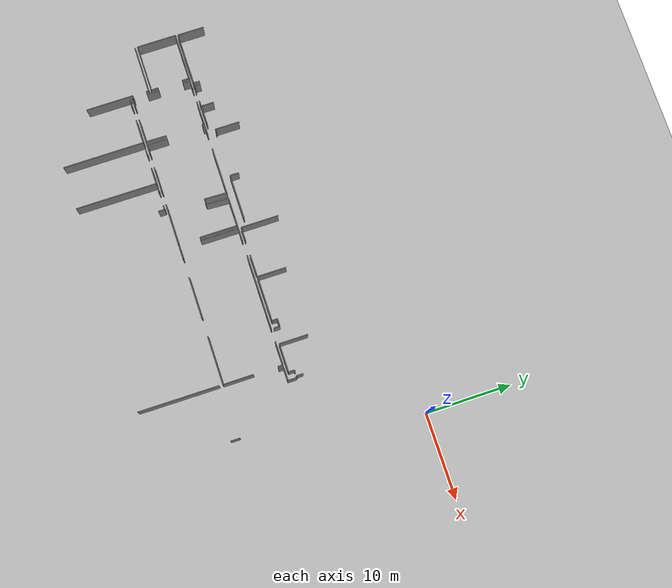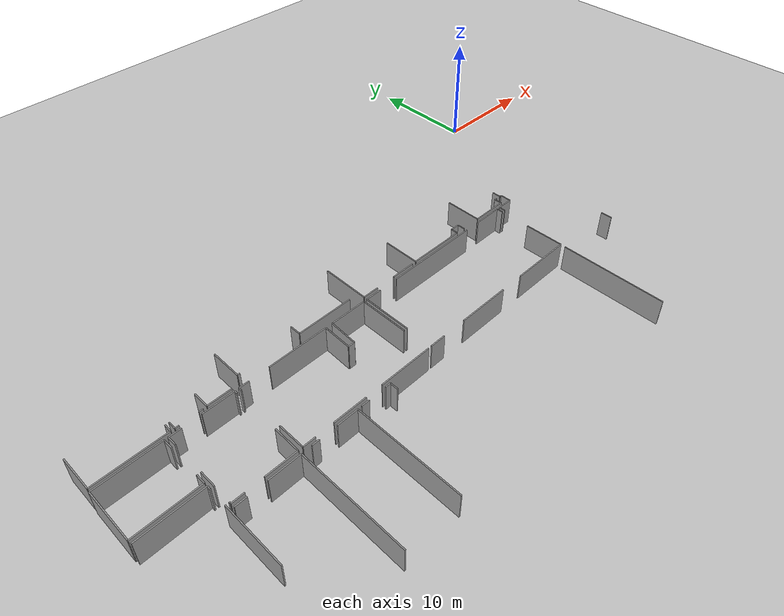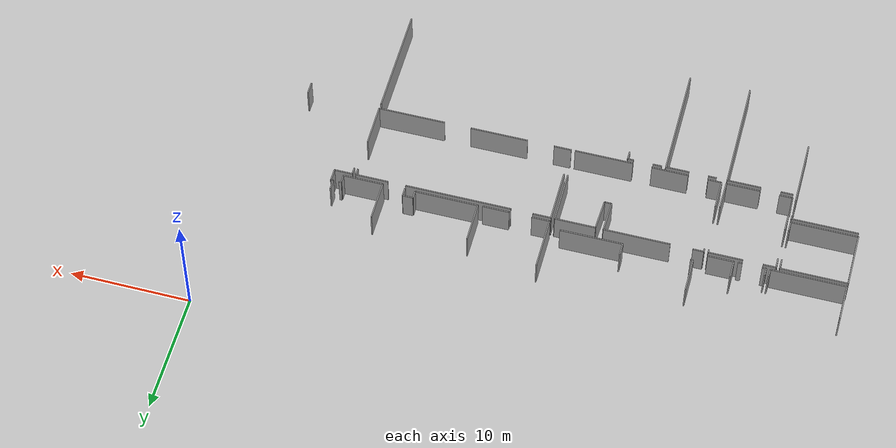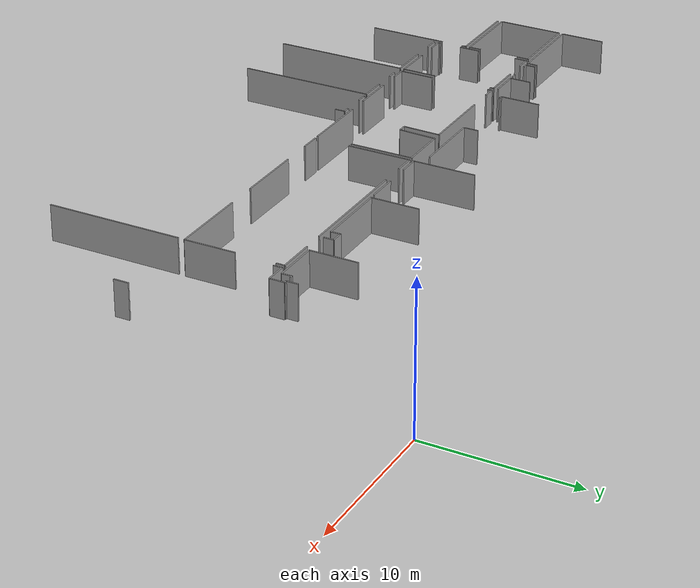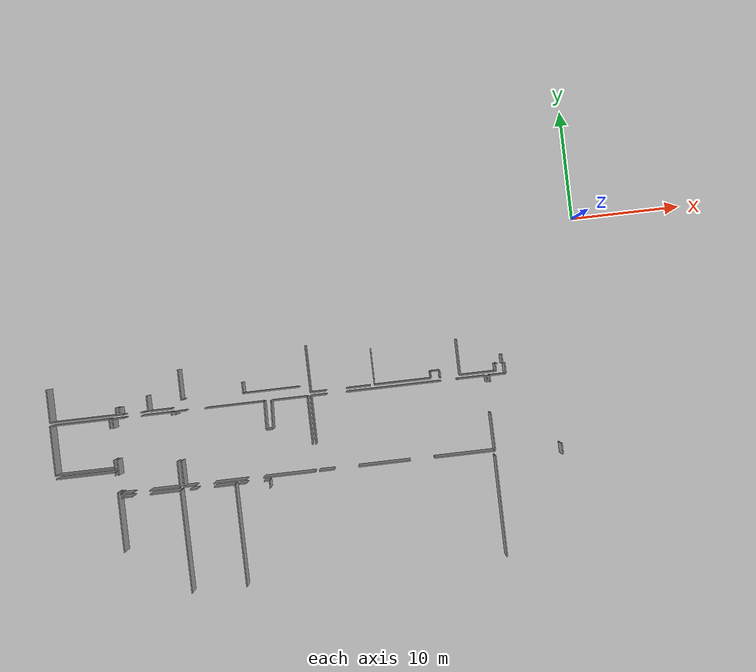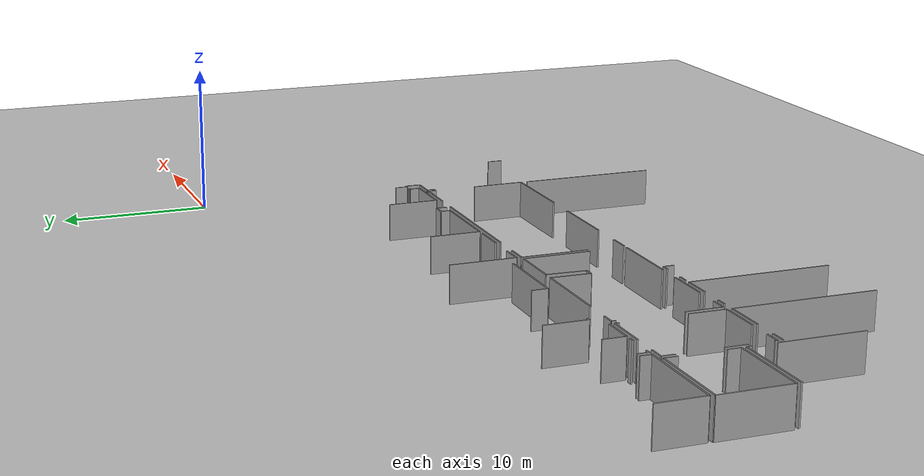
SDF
<sdf version="1.6">
 <world name="default">
  <model name="ground_plane">
   <static>1</static>
   <link name="link">
    <collision name="collision">
     <geometry><plane><normal>0 0 1</normal><size>100 100</size></plane></geometry>
     <surface><friction><ode><mu>100</mu><mu2>50</mu2></ode></friction></surface>
    </collision>
    <visual name="visual">
     <cast_shadows>0</cast_shadows>
     <geometry><plane><normal>0 0 1</normal><size>100 100</size></plane></geometry>
     <material>
      <script><uri>file://media/materials/scripts/gazebo.material</uri><name>Gazebo/Grey</name></script>
     </material>
    </visual>
   </link>
  </model>
  <model name="0510032260_A_40_1_102">
   <static>1</static>
   <link name="Wall_0">
    <collision name="Wall_0_Collision">
     <geometry><box><size>6.1017788129 0.1 2.5</size></box></geometry>
     <pose>3.05088940645 0 1.25 0 0 0</pose>
    </collision>
    <visual name="Wall_0_Visual">
     <pose>3.05088940645 0 1.25 0 0 0</pose>
     <geometry><box><size>6.1017788129 0.1 2.5</size></box></geometry>
     <material>
      <script><uri>file://media/materials/scripts/gazebo.material</uri><name>Gazebo/Grey</name></script>
      <ambient>1 1 1 1</ambient>
     </material>
    </visual>
    <pose>6.38659195187 -44.0144183479 0 0 0 3.14159265359</pose>
   </link>
   <link name="Wall_1">
    <collision name="Wall_1_Collision">
     <geometry><box><size>3.08204877615 0.1 2.5</size></box></geometry>
     <pose>1.54102438808 0 1.25 0 0 0</pose>
    </collision>
    <visual name="Wall_1_Visual">
     <pose>1.54102438808 0 1.25 0 0 0</pose>
     <geometry><box><size>3.08204877615 0.1 2.5</size></box></geometry>
     <material>
      <script><uri>file://media/materials/scripts/gazebo.material</uri><name>Gazebo/Grey</name></script>
      <ambient>1 1 1 1</ambient>
     </material>
    </visual>
    <pose>0.284813138973 -44.0144183479 0 0 0 1.57079632679</pose>
   </link>
   <link name="Wall_10">
    <collision name="Wall_10_Collision">
     <geometry><box><size>0.699463773333 0.1 2.5</size></box></geometry>
     <pose>0.349731886667 0 1.25 0 0 0</pose>
    </collision>
    <visual name="Wall_10_Visual">
     <pose>0.349731886667 0 1.25 0 0 0</pose>
     <geometry><box><size>0.699463773333 0.1 2.5</size></box></geometry>
     <material>
      <script><uri>file://media/materials/scripts/gazebo.material</uri><name>Gazebo/Grey</name></script>
      <ambient>1 1 1 1</ambient>
     </material>
    </visual>
    <pose>6.4162917177 -43.3155853963 0 0 0 -1.61326985949</pose>
   </link>
   <link name="Wall_16">
    <collision name="Wall_16_Collision">
     <geometry><box><size>0.355508735412 0.1 2.5</size></box></geometry>
     <pose>0.177754367706 0 1.25 0 0 0</pose>
    </collision>
    <visual name="Wall_16_Visual">
     <pose>0.177754367706 0 1.25 0 0 0</pose>
     <geometry><box><size>0.355508735412 0.1 2.5</size></box></geometry>
     <material>
      <script><uri>file://media/materials/scripts/gazebo.material</uri><name>Gazebo/Grey</name></script>
      <ambient>1 1 1 1</ambient>
     </material>
    </visual>
    <pose>8.99623676044 -44.0216529062 0 0 0 3.14159265359</pose>
   </link>
   <link name="Wall_17">
    <collision name="Wall_17_Collision">
     <geometry><box><size>0.331139696783 0.1 2.5</size></box></geometry>
     <pose>0.165569848392 0 1.25 0 0 0</pose>
    </collision>
    <visual name="Wall_17_Visual">
     <pose>0.165569848392 0 1.25 0 0 0</pose>
     <geometry><box><size>0.331139696783 0.1 2.5</size></box></geometry>
     <material>
      <script><uri>file://media/materials/scripts/gazebo.material</uri><name>Gazebo/Grey</name></script>
      <ambient>1 1 1 1</ambient>
     </material>
    </visual>
    <pose>7.05737512454 -44.0216529062 0 0 0 3.14159265359</pose>
   </link>
   <link name="Wall_18">
    <collision name="Wall_18_Collision">
     <geometry><box><size>0.696548354138 0.1 2.5</size></box></geometry>
     <pose>0.348274177069 0 1.25 0 0 0</pose>
    </collision>
    <visual name="Wall_18_Visual">
     <pose>0.348274177069 0 1.25 0 0 0</pose>
     <geometry><box><size>0.696548354138 0.1 2.5</size></box></geometry>
     <material>
      <script><uri>file://media/materials/scripts/gazebo.material</uri><name>Gazebo/Grey</name></script>
      <ambient>1 1 1 1</ambient>
     </material>
    </visual>
    <pose>6.72623542776 -44.0216529062 0 0 0 1.57079632679</pose>
   </link>
   <link name="Wall_30">
    <collision name="Wall_30_Collision">
     <geometry><box><size>2.09624501038 0.1 2.5</size></box></geometry>
     <pose>1.04812250519 0 1.25 0 0 0</pose>
    </collision>
    <visual name="Wall_30_Visual">
     <pose>1.04812250519 0 1.25 0 0 0</pose>
     <geometry><box><size>2.09624501038 0.1 2.5</size></box></geometry>
     <material>
      <script><uri>file://media/materials/scripts/gazebo.material</uri><name>Gazebo/Grey</name></script>
      <ambient>1 1 1 1</ambient>
     </material>
    </visual>
    <pose>11.4252714546 -43.9977915559 0 0 0 3.14159265359</pose>
   </link>
   <link name="Wall_31">
    <collision name="Wall_31_Collision">
     <geometry><box><size>1.46379230471 0.1 2.5</size></box></geometry>
     <pose>0.731896152357 0 1.25 0 0 0</pose>
    </collision>
    <visual name="Wall_31_Visual">
     <pose>0.731896152357 0 1.25 0 0 0</pose>
     <geometry><box><size>1.46379230471 0.1 2.5</size></box></geometry>
     <material>
      <script><uri>file://media/materials/scripts/gazebo.material</uri><name>Gazebo/Grey</name></script>
      <ambient>1 1 1 1</ambient>
     </material>
    </visual>
    <pose>9.32902644421 -43.9977915559 0 0 0 1.57079632679</pose>
   </link>
   <link name="Wall_35">
    <collision name="Wall_35_Collision">
     <geometry><box><size>5.4631069255 0.1 2.5</size></box></geometry>
     <pose>2.73155346275 0 1.25 0 0 0</pose>
    </collision>
    <visual name="Wall_35_Visual">
     <pose>2.73155346275 0 1.25 0 0 0</pose>
     <geometry><box><size>5.4631069255 0.1 2.5</size></box></geometry>
     <material>
      <script><uri>file://media/materials/scripts/gazebo.material</uri><name>Gazebo/Grey</name></script>
      <ambient>1 1 1 1</ambient>
     </material>
    </visual>
    <pose>5.6998165976 -48.8875914632 0 0 0 3.14159265359</pose>
   </link>
   <link name="Wall_36">
    <collision name="Wall_36_Collision">
     <geometry><box><size>4.57896774275 0.1 2.5</size></box></geometry>
     <pose>2.28948387138 0 1.25 0 0 0</pose>
    </collision>
    <visual name="Wall_36_Visual">
     <pose>2.28948387138 0 1.25 0 0 0</pose>
     <geometry><box><size>4.57896774275 0.1 2.5</size></box></geometry>
     <material>
      <script><uri>file://media/materials/scripts/gazebo.material</uri><name>Gazebo/Grey</name></script>
      <ambient>1 1 1 1</ambient>
     </material>
    </visual>
    <pose>0.236709672097 -48.8875914632 0 0 0 1.57079632679</pose>
   </link>
   <link name="Wall_37">
    <collision name="Wall_37_Collision">
     <geometry><box><size>5.46602613326 0.1 2.5</size></box></geometry>
     <pose>2.73301306663 0 1.25 0 0 0</pose>
    </collision>
    <visual name="Wall_37_Visual">
     <pose>2.73301306663 0 1.25 0 0 0</pose>
     <geometry><box><size>5.46602613326 0.1 2.5</size></box></geometry>
     <material>
      <script><uri>file://media/materials/scripts/gazebo.material</uri><name>Gazebo/Grey</name></script>
      <ambient>1 1 1 1</ambient>
     </material>
    </visual>
    <pose>0.236709672097 -44.3086237205 0 0 0 0.0</pose>
   </link>
   <link name="Wall_38">
    <collision name="Wall_38_Collision">
     <geometry><box><size>0.859516299968 0.1 2.5</size></box></geometry>
     <pose>0.429758149984 0 1.25 0 0 0</pose>
    </collision>
    <visual name="Wall_38_Visual">
     <pose>0.429758149984 0 1.25 0 0 0</pose>
     <geometry><box><size>0.859516299968 0.1 2.5</size></box></geometry>
     <material>
      <script><uri>file://media/materials/scripts/gazebo.material</uri><name>Gazebo/Grey</name></script>
      <ambient>1 1 1 1</ambient>
     </material>
    </visual>
    <pose>5.70273580535 -44.3086237205 0 0 0 -1.57079632679</pose>
   </link>
   <link name="Wall_39">
    <collision name="Wall_39_Collision">
     <geometry><box><size>0.840229215503 0.1 2.5</size></box></geometry>
     <pose>0.420114607751 0 1.25 0 0 0</pose>
    </collision>
    <visual name="Wall_39_Visual">
     <pose>0.420114607751 0 1.25 0 0 0</pose>
     <geometry><box><size>0.840229215503 0.1 2.5</size></box></geometry>
     <material>
      <script><uri>file://media/materials/scripts/gazebo.material</uri><name>Gazebo/Grey</name></script>
      <ambient>1 1 1 1</ambient>
     </material>
    </visual>
    <pose>5.70273580535 -48.0473673188 0 0 0 -1.57427063306</pose>
   </link>
   <link name="Wall_40">
    <collision name="Wall_40_Collision">
     <geometry><box><size>2.78314728672 0.1 2.5</size></box></geometry>
     <pose>1.39157364336 0 1.25 0 0 0</pose>
    </collision>
    <visual name="Wall_40_Visual">
     <pose>1.39157364336 0 1.25 0 0 0</pose>
     <geometry><box><size>2.78314728672 0.1 2.5</size></box></geometry>
     <material>
      <script><uri>file://media/materials/scripts/gazebo.material</uri><name>Gazebo/Grey</name></script>
      <ambient>1 1 1 1</ambient>
     </material>
    </visual>
    <pose>11.426032987 -51.239457535 0 0 0 3.14159265359</pose>
   </link>
   <link name="Wall_41">
    <collision name="Wall_41_Collision">
     <geometry><box><size>1.07058771267 0.1 2.5</size></box></geometry>
     <pose>0.535293856337 0 1.25 0 0 0</pose>
    </collision>
    <visual name="Wall_41_Visual">
     <pose>0.535293856337 0 1.25 0 0 0</pose>
     <geometry><box><size>1.07058771267 0.1 2.5</size></box></geometry>
     <material>
      <script><uri>file://media/materials/scripts/gazebo.material</uri><name>Gazebo/Grey</name></script>
      <ambient>1 1 1 1</ambient>
     </material>
    </visual>
    <pose>7.0794595658 -51.239457535 0 0 0 3.14159265359</pose>
   </link>
   <link name="Wall_42">
    <collision name="Wall_42_Collision">
     <geometry><box><size>0.153575712191 0.1 2.5</size></box></geometry>
     <pose>0.0767878560957 0 1.25 0 0 0</pose>
    </collision>
    <visual name="Wall_42_Visual">
     <pose>0.0767878560957 0 1.25 0 0 0</pose>
     <geometry><box><size>0.153575712191 0.1 2.5</size></box></geometry>
     <material>
      <script><uri>file://media/materials/scripts/gazebo.material</uri><name>Gazebo/Grey</name></script>
      <ambient>1 1 1 1</ambient>
     </material>
    </visual>
    <pose>6.00887185313 -51.239457535 0 0 0 1.57079632679</pose>
   </link>
   <link name="Wall_43">
    <collision name="Wall_43_Collision">
     <geometry><box><size>1.43003103245 0.1 2.5</size></box></geometry>
     <pose>0.715015516224 0 1.25 0 0 0</pose>
    </collision>
    <visual name="Wall_43_Visual">
     <pose>0.715015516224 0 1.25 0 0 0</pose>
     <geometry><box><size>1.43003103245 0.1 2.5</size></box></geometry>
     <material>
      <script><uri>file://media/materials/scripts/gazebo.material</uri><name>Gazebo/Grey</name></script>
      <ambient>1 1 1 1</ambient>
     </material>
    </visual>
    <pose>6.00887185313 -49.4927559225 0 0 0 1.57079632679</pose>
   </link>
   <link name="Wall_44">
    <collision name="Wall_44_Collision">
     <geometry><box><size>0.851139442939 0.1 2.5</size></box></geometry>
     <pose>0.42556972147 0 1.25 0 0 0</pose>
    </collision>
    <visual name="Wall_44_Visual">
     <pose>0.42556972147 0 1.25 0 0 0</pose>
     <geometry><box><size>0.851139442939 0.1 2.5</size></box></geometry>
     <material>
      <script><uri>file://media/materials/scripts/gazebo.material</uri><name>Gazebo/Grey</name></script>
      <ambient>1 1 1 1</ambient>
     </material>
    </visual>
    <pose>6.00887185313 -45.1765168775 0 0 0 1.57079632679</pose>
   </link>
   <link name="Wall_45">
    <collision name="Wall_45_Collision">
     <geometry><box><size>1.03746105079 0.1 2.5</size></box></geometry>
     <pose>0.518730525394 0 1.25 0 0 0</pose>
    </collision>
    <visual name="Wall_45_Visual">
     <pose>0.518730525394 0 1.25 0 0 0</pose>
     <geometry><box><size>1.03746105079 0.1 2.5</size></box></geometry>
     <material>
      <script><uri>file://media/materials/scripts/gazebo.material</uri><name>Gazebo/Grey</name></script>
      <ambient>1 1 1 1</ambient>
     </material>
    </visual>
    <pose>6.00887185313 -44.3253774345 0 0 0 0.0</pose>
   </link>
   <link name="Wall_46">
    <collision name="Wall_46_Collision">
     <geometry><box><size>2.79279336451 0.1 2.5</size></box></geometry>
     <pose>1.39639668226 0 1.25 0 0 0</pose>
    </collision>
    <visual name="Wall_46_Visual">
     <pose>1.39639668226 0 1.25 0 0 0</pose>
     <geometry><box><size>2.79279336451 0.1 2.5</size></box></geometry>
     <material>
      <script><uri>file://media/materials/scripts/gazebo.material</uri><name>Gazebo/Grey</name></script>
      <ambient>1 1 1 1</ambient>
     </material>
    </visual>
    <pose>8.66205093383 -44.3253774345 0 0 0 0.0</pose>
   </link>
   <link name="Wall_47">
    <collision name="Wall_47_Collision">
     <geometry><box><size>0.263236386021 0.1 2.5</size></box></geometry>
     <pose>0.13161819301 0 1.25 0 0 0</pose>
    </collision>
    <visual name="Wall_47_Visual">
     <pose>0.13161819301 0 1.25 0 0 0</pose>
     <geometry><box><size>0.263236386021 0.1 2.5</size></box></geometry>
     <material>
      <script><uri>file://media/materials/scripts/gazebo.material</uri><name>Gazebo/Grey</name></script>
      <ambient>1 1 1 1</ambient>
     </material>
    </visual>
    <pose>11.4548442983 -44.3253774345 0 0 0 -1.57079632679</pose>
   </link>
   <link name="Wall_48">
    <collision name="Wall_48_Collision">
     <geometry><box><size>2.39557360553 0.1 2.5</size></box></geometry>
     <pose>1.19778680276 0 1.25 0 0 0</pose>
    </collision>
    <visual name="Wall_48_Visual">
     <pose>1.19778680276 0 1.25 0 0 0</pose>
     <geometry><box><size>2.39557360553 0.1 2.5</size></box></geometry>
     <material>
      <script><uri>file://media/materials/scripts/gazebo.material</uri><name>Gazebo/Grey</name></script>
      <ambient>1 1 1 1</ambient>
     </material>
    </visual>
    <pose>11.4548442983 -48.8440571911 0 0 0 -1.58282351137</pose>
   </link>
   <link name="Wall_57">
    <collision name="Wall_57_Collision">
     <geometry><box><size>5.4386109648 0.1 2.5</size></box></geometry>
     <pose>2.7193054824 0 1.25 0 0 0</pose>
    </collision>
    <visual name="Wall_57_Visual">
     <pose>2.7193054824 0 1.25 0 0 0</pose>
     <geometry><box><size>5.4386109648 0.1 2.5</size></box></geometry>
     <material>
      <script><uri>file://media/materials/scripts/gazebo.material</uri><name>Gazebo/Grey</name></script>
      <ambient>1 1 1 1</ambient>
     </material>
    </visual>
    <pose>0.268313269068 -49.2019774459 0 0 0 0.0</pose>
   </link>
   <link name="Wall_58">
    <collision name="Wall_58_Collision">
     <geometry><box><size>0.290397710326 0.1 2.5</size></box></geometry>
     <pose>0.145198855163 0 1.25 0 0 0</pose>
    </collision>
    <visual name="Wall_58_Visual">
     <pose>0.145198855163 0 1.25 0 0 0</pose>
     <geometry><box><size>0.290397710326 0.1 2.5</size></box></geometry>
     <material>
      <script><uri>file://media/materials/scripts/gazebo.material</uri><name>Gazebo/Grey</name></script>
      <ambient>1 1 1 1</ambient>
     </material>
    </visual>
    <pose>5.70692423387 -49.2019774459 0 0 0 -1.57079632679</pose>
   </link>
   <link name="Wall_59">
    <collision name="Wall_59_Collision">
     <geometry><box><size>5.51704880788 0.1 2.5</size></box></geometry>
     <pose>2.75852440394 0 1.25 0 0 0</pose>
    </collision>
    <visual name="Wall_59_Visual">
     <pose>2.75852440394 0 1.25 0 0 0</pose>
     <geometry><box><size>5.51704880788 0.1 2.5</size></box></geometry>
     <material>
      <script><uri>file://media/materials/scripts/gazebo.material</uri><name>Gazebo/Grey</name></script>
      <ambient>1 1 1 1</ambient>
     </material>
    </visual>
    <pose>5.70692423387 -51.0679858101 0 0 0 -1.57079632679</pose>
   </link>
   <link name="Wall_70">
    <collision name="Wall_70_Collision">
     <geometry><box><size>1.00534976551 0.1 2.5</size></box></geometry>
     <pose>0.502674882756 0 1.25 0 0 0</pose>
    </collision>
    <visual name="Wall_70_Visual">
     <pose>0.502674882756 0 1.25 0 0 0</pose>
     <geometry><box><size>1.00534976551 0.1 2.5</size></box></geometry>
     <material>
      <script><uri>file://media/materials/scripts/gazebo.material</uri><name>Gazebo/Grey</name></script>
      <ambient>1 1 1 1</ambient>
     </material>
    </visual>
    <pose>6.01369489202 -51.5727549071 0 0 0 0.0</pose>
   </link>
   <link name="Wall_71">
    <collision name="Wall_71_Collision">
     <geometry><box><size>2.78175114389 0.1 2.5</size></box></geometry>
     <pose>1.39087557194 0 1.25 0 0 0</pose>
    </collision>
    <visual name="Wall_71_Visual">
     <pose>1.39087557194 0 1.25 0 0 0</pose>
     <geometry><box><size>2.78175114389 0.1 2.5</size></box></geometry>
     <material>
      <script><uri>file://media/materials/scripts/gazebo.material</uri><name>Gazebo/Grey</name></script>
      <ambient>1 1 1 1</ambient>
     </material>
    </visual>
    <pose>8.63653959651 -51.5727549071 0 0 0 0.0</pose>
   </link>
   <link name="Wall_72">
    <collision name="Wall_72_Collision">
     <geometry><box><size>9.4332521548 0.1 2.5</size></box></geometry>
     <pose>4.7166260774 0 1.25 0 0 0</pose>
    </collision>
    <visual name="Wall_72_Visual">
     <pose>4.7166260774 0 1.25 0 0 0</pose>
     <geometry><box><size>9.4332521548 0.1 2.5</size></box></geometry>
     <material>
      <script><uri>file://media/materials/scripts/gazebo.material</uri><name>Gazebo/Grey</name></script>
      <ambient>1 1 1 1</ambient>
     </material>
    </visual>
    <pose>11.4182907404 -51.5727549071 0 0 0 -1.56860320032</pose>
   </link>
   <link name="Wall_73">
    <collision name="Wall_73_Collision">
     <geometry><box><size>4.82164275243 0.1 2.5</size></box></geometry>
     <pose>2.41082137622 0 1.25 0 0 0</pose>
    </collision>
    <visual name="Wall_73_Visual">
     <pose>2.41082137622 0 1.25 0 0 0</pose>
     <geometry><box><size>4.82164275243 0.1 2.5</size></box></geometry>
     <material>
      <script><uri>file://media/materials/scripts/gazebo.material</uri><name>Gazebo/Grey</name></script>
      <ambient>1 1 1 1</ambient>
     </material>
    </visual>
    <pose>23.9586995564 -51.2428844311 0 0 0 3.14159265359</pose>
   </link>
   <link name="Wall_74">
    <collision name="Wall_74_Collision">
     <geometry><box><size>3.01554160823 0.1 2.5</size></box></geometry>
     <pose>1.50777080411 0 1.25 0 0 0</pose>
    </collision>
    <visual name="Wall_74_Visual">
     <pose>1.50777080411 0 1.25 0 0 0</pose>
     <geometry><box><size>3.01554160823 0.1 2.5</size></box></geometry>
     <material>
      <script><uri>file://media/materials/scripts/gazebo.material</uri><name>Gazebo/Grey</name></script>
      <ambient>1 1 1 1</ambient>
     </material>
    </visual>
    <pose>17.577819098 -51.2428844311 0 0 0 3.14159265359</pose>
   </link>
   <link name="Wall_75">
    <collision name="Wall_75_Collision">
     <geometry><box><size>1.09800288113 0.1 2.5</size></box></geometry>
     <pose>0.549001440566 0 1.25 0 0 0</pose>
    </collision>
    <visual name="Wall_75_Visual">
     <pose>0.549001440566 0 1.25 0 0 0</pose>
     <geometry><box><size>1.09800288113 0.1 2.5</size></box></geometry>
     <material>
      <script><uri>file://media/materials/scripts/gazebo.material</uri><name>Gazebo/Grey</name></script>
      <ambient>1 1 1 1</ambient>
     </material>
    </visual>
    <pose>12.9178750706 -51.2428844311 0 0 0 3.14159265359</pose>
   </link>
   <link name="Wall_76">
    <collision name="Wall_76_Collision">
     <geometry><box><size>2.39438496735 0.1 2.5</size></box></geometry>
     <pose>1.19719248367 0 1.25 0 0 0</pose>
    </collision>
    <visual name="Wall_76_Visual">
     <pose>1.19719248367 0 1.25 0 0 0</pose>
     <geometry><box><size>2.39438496735 0.1 2.5</size></box></geometry>
     <material>
      <script><uri>file://media/materials/scripts/gazebo.material</uri><name>Gazebo/Grey</name></script>
      <ambient>1 1 1 1</ambient>
     </material>
    </visual>
    <pose>11.8198721895 -51.2428844311 0 0 0 1.57079632679</pose>
   </link>
   <link name="Wall_77">
    <collision name="Wall_77_Collision">
     <geometry><box><size>0.278340113088 0.1 2.5</size></box></geometry>
     <pose>0.139170056544 0 1.25 0 0 0</pose>
    </collision>
    <visual name="Wall_77_Visual">
     <pose>0.139170056544 0 1.25 0 0 0</pose>
     <geometry><box><size>0.278340113088 0.1 2.5</size></box></geometry>
     <material>
      <script><uri>file://media/materials/scripts/gazebo.material</uri><name>Gazebo/Grey</name></script>
      <ambient>1 1 1 1</ambient>
     </material>
    </visual>
    <pose>11.8198721895 -44.5886138205 0 0 0 1.57079632679</pose>
   </link>
   <link name="Wall_78">
    <collision name="Wall_78_Collision">
     <geometry><box><size>0.882489195758 0.1 2.5</size></box></geometry>
     <pose>0.441244597879 0 1.25 0 0 0</pose>
    </collision>
    <visual name="Wall_78_Visual">
     <pose>0.441244597879 0 1.25 0 0 0</pose>
     <geometry><box><size>0.882489195758 0.1 2.5</size></box></geometry>
     <material>
      <script><uri>file://media/materials/scripts/gazebo.material</uri><name>Gazebo/Grey</name></script>
      <ambient>1 1 1 1</ambient>
     </material>
    </visual>
    <pose>11.8198721895 -44.3102737075 0 0 0 0.0</pose>
   </link>
   <link name="Wall_79">
    <collision name="Wall_79_Collision">
     <geometry><box><size>5.45650697754 0.1 2.5</size></box></geometry>
     <pose>2.72825348877 0 1.25 0 0 0</pose>
    </collision>
    <visual name="Wall_79_Visual">
     <pose>2.72825348877 0 1.25 0 0 0</pose>
     <geometry><box><size>5.45650697754 0.1 2.5</size></box></geometry>
     <material>
      <script><uri>file://media/materials/scripts/gazebo.material</uri><name>Gazebo/Grey</name></script>
      <ambient>1 1 1 1</ambient>
     </material>
    </visual>
    <pose>14.5182355293 -44.3102737075 0 0 0 0.0</pose>
   </link>
   <link name="Wall_80">
    <collision name="Wall_80_Collision">
     <geometry><box><size>2.60568098498 0.1 2.5</size></box></geometry>
     <pose>1.30284049249 0 1.25 0 0 0</pose>
    </collision>
    <visual name="Wall_80_Visual">
     <pose>1.30284049249 0 1.25 0 0 0</pose>
     <geometry><box><size>2.60568098498 0.1 2.5</size></box></geometry>
     <material>
      <script><uri>file://media/materials/scripts/gazebo.material</uri><name>Gazebo/Grey</name></script>
      <ambient>1 1 1 1</ambient>
     </material>
    </visual>
    <pose>19.9747425068 -44.3102737075 0 0 0 -1.60002634051</pose>
   </link>
   <link name="Wall_81">
    <collision name="Wall_81_Collision">
     <geometry><box><size>0.596533758099 0.1 2.5</size></box></geometry>
     <pose>0.29826687905 0 1.25 0 0 0</pose>
    </collision>
    <visual name="Wall_81_Visual">
     <pose>0.29826687905 0 1.25 0 0 0</pose>
     <geometry><box><size>0.596533758099 0.1 2.5</size></box></geometry>
     <material>
      <script><uri>file://media/materials/scripts/gazebo.material</uri><name>Gazebo/Grey</name></script>
      <ambient>1 1 1 1</ambient>
     </material>
    </visual>
    <pose>19.8985892611 -46.914841633 0 0 0 0.0</pose>
   </link>
   <link name="Wall_82">
    <collision name="Wall_82_Collision">
     <geometry><box><size>2.60499638295 0.1 2.5</size></box></geometry>
     <pose>1.30249819147 0 1.25 0 0 0</pose>
    </collision>
    <visual name="Wall_82_Visual">
     <pose>1.30249819147 0 1.25 0 0 0</pose>
     <geometry><box><size>2.60499638295 0.1 2.5</size></box></geometry>
     <material>
      <script><uri>file://media/materials/scripts/gazebo.material</uri><name>Gazebo/Grey</name></script>
      <ambient>1 1 1 1</ambient>
     </material>
    </visual>
    <pose>20.4951230192 -46.914841633 0 0 0 1.52205447548</pose>
   </link>
   <link name="Wall_83">
    <collision name="Wall_83_Collision">
     <geometry><box><size>3.33805060383 0.1 2.5</size></box></geometry>
     <pose>1.66902530192 0 1.25 0 0 0</pose>
    </collision>
    <visual name="Wall_83_Visual">
     <pose>1.66902530192 0 1.25 0 0 0</pose>
     <geometry><box><size>3.33805060383 0.1 2.5</size></box></geometry>
     <material>
      <script><uri>file://media/materials/scripts/gazebo.material</uri><name>Gazebo/Grey</name></script>
      <ambient>1 1 1 1</ambient>
     </material>
    </visual>
    <pose>20.6220450954 -44.3129390711 0 0 0 0.0</pose>
   </link>
   <link name="Wall_84">
    <collision name="Wall_84_Collision">
     <geometry><box><size>4.42107690042 0.1 2.5</size></box></geometry>
     <pose>2.21053845021 0 1.25 0 0 0</pose>
    </collision>
    <visual name="Wall_84_Visual">
     <pose>2.21053845021 0 1.25 0 0 0</pose>
     <geometry><box><size>4.42107690042 0.1 2.5</size></box></geometry>
     <material>
      <script><uri>file://media/materials/scripts/gazebo.material</uri><name>Gazebo/Grey</name></script>
      <ambient>1 1 1 1</ambient>
     </material>
    </visual>
    <pose>23.9600956992 -44.3129390711 0 0 0 -1.57111211928</pose>
   </link>
   <link name="Wall_92">
    <collision name="Wall_92_Collision">
     <geometry><box><size>0.674971601185 0.1 2.5</size></box></geometry>
     <pose>0.337485800593 0 1.25 0 0 0</pose>
    </collision>
    <visual name="Wall_92_Visual">
     <pose>0.337485800593 0 1.25 0 0 0</pose>
     <geometry><box><size>0.674971601185 0.1 2.5</size></box></geometry>
     <material>
      <script><uri>file://media/materials/scripts/gazebo.material</uri><name>Gazebo/Grey</name></script>
      <ambient>1 1 1 1</ambient>
     </material>
    </visual>
    <pose>12.307252962 -51.5703433877 0 0 0 0.0</pose>
   </link>
   <link name="Wall_93">
    <collision name="Wall_93_Collision">
     <geometry><box><size>1.91106570121 0.1 2.5</size></box></geometry>
     <pose>0.955532850606 0 1.25 0 0 0</pose>
    </collision>
    <visual name="Wall_93_Visual">
     <pose>0.955532850606 0 1.25 0 0 0</pose>
     <geometry><box><size>1.91106570121 0.1 2.5</size></box></geometry>
     <material>
      <script><uri>file://media/materials/scripts/gazebo.material</uri><name>Gazebo/Grey</name></script>
      <ambient>1 1 1 1</ambient>
     </material>
    </visual>
    <pose>14.5655774637 -51.5703433877 0 0 0 0.0</pose>
   </link>
   <link name="Wall_94">
    <collision name="Wall_94_Collision">
     <geometry><box><size>9.4197784102 0.1 2.5</size></box></geometry>
     <pose>4.7098892051 0 1.25 0 0 0</pose>
    </collision>
    <visual name="Wall_94_Visual">
     <pose>4.7098892051 0 1.25 0 0 0</pose>
     <geometry><box><size>9.4197784102 0.1 2.5</size></box></geometry>
     <material>
      <script><uri>file://media/materials/scripts/gazebo.material</uri><name>Gazebo/Grey</name></script>
      <ambient>1 1 1 1</ambient>
     </material>
    </visual>
    <pose>16.4766431649 -51.5703433877 0 0 0 -1.57004178283</pose>
   </link>
   <link name="Wall_98">
    <collision name="Wall_98_Collision">
     <geometry><box><size>0.732340379624 0.1 2.5</size></box></geometry>
     <pose>0.366170189812 0 1.25 0 0 0</pose>
    </collision>
    <visual name="Wall_98_Visual">
     <pose>0.366170189812 0 1.25 0 0 0</pose>
     <geometry><box><size>0.732340379624 0.1 2.5</size></box></geometry>
     <material>
      <script><uri>file://media/materials/scripts/gazebo.material</uri><name>Gazebo/Grey</name></script>
      <ambient>1 1 1 1</ambient>
     </material>
    </visual>
    <pose>16.8292326926 -51.5620934527 0 0 0 0.0</pose>
   </link>
   <link name="Wall_99">
    <collision name="Wall_99_Collision">
     <geometry><box><size>0.492330733546 0.1 2.5</size></box></geometry>
     <pose>0.246165366773 0 1.25 0 0 0</pose>
    </collision>
    <visual name="Wall_99_Visual">
     <pose>0.246165366773 0 1.25 0 0 0</pose>
     <geometry><box><size>0.492330733546 0.1 2.5</size></box></geometry>
     <material>
      <script><uri>file://media/materials/scripts/gazebo.material</uri><name>Gazebo/Grey</name></script>
      <ambient>1 1 1 1</ambient>
     </material>
    </visual>
    <pose>19.155460505 -51.5620934527 0 0 0 0.0</pose>
   </link>
   <link name="Wall_100">
    <collision name="Wall_100_Collision">
     <geometry><box><size>0.707971340995 0.1 2.5</size></box></geometry>
     <pose>0.353985670498 0 1.25 0 0 0</pose>
    </collision>
    <visual name="Wall_100_Visual">
     <pose>0.353985670498 0 1.25 0 0 0</pose>
     <geometry><box><size>0.707971340995 0.1 2.5</size></box></geometry>
     <material>
      <script><uri>file://media/materials/scripts/gazebo.material</uri><name>Gazebo/Grey</name></script>
      <ambient>1 1 1 1</ambient>
     </material>
    </visual>
    <pose>19.6477912386 -51.5620934527 0 0 0 -1.57079632679</pose>
   </link>
   <link name="Wall_119">
    <collision name="Wall_119_Collision">
     <geometry><box><size>0.218305971049 0.1 2.5</size></box></geometry>
     <pose>0.109152985525 0 1.25 0 0 0</pose>
    </collision>
    <visual name="Wall_119_Visual">
     <pose>0.109152985525 0 1.25 0 0 0</pose>
     <geometry><box><size>0.218305971049 0.1 2.5</size></box></geometry>
     <material>
      <script><uri>file://media/materials/scripts/gazebo.material</uri><name>Gazebo/Grey</name></script>
      <ambient>1 1 1 1</ambient>
     </material>
    </visual>
    <pose>12.6788808011 -43.270020371 0 0 0 3.14159265359</pose>
   </link>
   <link name="Wall_120">
    <collision name="Wall_120_Collision">
     <geometry><box><size>2.79190490998 0.1 2.5</size></box></geometry>
     <pose>1.39595245499 0 1.25 0 0 0</pose>
    </collision>
    <visual name="Wall_120_Visual">
     <pose>1.39595245499 0 1.25 0 0 0</pose>
     <geometry><box><size>2.79190490998 0.1 2.5</size></box></geometry>
     <material>
      <script><uri>file://media/materials/scripts/gazebo.material</uri><name>Gazebo/Grey</name></script>
      <ambient>1 1 1 1</ambient>
     </material>
    </visual>
    <pose>12.4605748301 -43.270020371 0 0 0 1.57079632679</pose>
   </link>
   <link name="Wall_130">
    <collision name="Wall_130_Collision">
     <geometry><box><size>5.13158646249 0.1 2.5</size></box></geometry>
     <pose>2.56579323125 0 1.25 0 0 0</pose>
    </collision>
    <visual name="Wall_130_Visual">
     <pose>2.56579323125 0 1.25 0 0 0</pose>
     <geometry><box><size>5.13158646249 0.1 2.5</size></box></geometry>
     <material>
      <script><uri>file://media/materials/scripts/gazebo.material</uri><name>Gazebo/Grey</name></script>
      <ambient>1 1 1 1</ambient>
     </material>
    </visual>
    <pose>23.3040354874 -43.3457928505 0 0 0 3.14159265359</pose>
   </link>
   <link name="Wall_131">
    <collision name="Wall_131_Collision">
     <geometry><box><size>1.02553037563 0.1 2.5</size></box></geometry>
     <pose>0.512765187813 0 1.25 0 0 0</pose>
    </collision>
    <visual name="Wall_131_Visual">
     <pose>0.512765187813 0 1.25 0 0 0</pose>
     <geometry><box><size>1.02553037563 0.1 2.5</size></box></geometry>
     <material>
      <script><uri>file://media/materials/scripts/gazebo.material</uri><name>Gazebo/Grey</name></script>
      <ambient>1 1 1 1</ambient>
     </material>
    </visual>
    <pose>18.1724490249 -43.3457928505 0 0 0 1.57079632679</pose>
   </link>
   <link name="Wall_135">
    <collision name="Wall_135_Collision">
     <geometry><box><size>5.58952131339 0.1 2.5</size></box></geometry>
     <pose>2.79476065669 0 1.25 0 0 0</pose>
    </collision>
    <visual name="Wall_135_Visual">
     <pose>2.79476065669 0 1.25 0 0 0</pose>
     <geometry><box><size>5.58952131339 0.1 2.5</size></box></geometry>
     <material>
      <script><uri>file://media/materials/scripts/gazebo.material</uri><name>Gazebo/Grey</name></script>
      <ambient>1 1 1 1</ambient>
     </material>
    </visual>
    <pose>40.5258381617 -51.2350152624 0 0 0 3.14159265359</pose>
   </link>
   <link name="Wall_136">
    <collision name="Wall_136_Collision">
     <geometry><box><size>4.79118145415 0.1 2.5</size></box></geometry>
     <pose>2.39559072707 0 1.25 0 0 0</pose>
    </collision>
    <visual name="Wall_136_Visual">
     <pose>2.39559072707 0 1.25 0 0 0</pose>
     <geometry><box><size>4.79118145415 0.1 2.5</size></box></geometry>
     <material>
      <script><uri>file://media/materials/scripts/gazebo.material</uri><name>Gazebo/Grey</name></script>
      <ambient>1 1 1 1</ambient>
     </material>
    </visual>
    <pose>32.7189881772 -51.2350152624 0 0 0 3.14159265359</pose>
   </link>
   <link name="Wall_137">
    <collision name="Wall_137_Collision">
     <geometry><box><size>1.43967711024 0.1 2.5</size></box></geometry>
     <pose>0.719838555119 0 1.25 0 0 0</pose>
    </collision>
    <visual name="Wall_137_Visual">
     <pose>0.719838555119 0 1.25 0 0 0</pose>
     <geometry><box><size>1.43967711024 0.1 2.5</size></box></geometry>
     <material>
      <script><uri>file://media/materials/scripts/gazebo.material</uri><name>Gazebo/Grey</name></script>
      <ambient>1 1 1 1</ambient>
     </material>
    </visual>
    <pose>25.7161895454 -51.2350152624 0 0 0 3.14159265359</pose>
   </link>
   <link name="Wall_138">
    <collision name="Wall_138_Collision">
     <geometry><box><size>4.44658801729 0.1 2.5</size></box></geometry>
     <pose>2.22329400864 0 1.25 0 0 0</pose>
    </collision>
    <visual name="Wall_138_Visual">
     <pose>2.22329400864 0 1.25 0 0 0</pose>
     <geometry><box><size>4.44658801729 0.1 2.5</size></box></geometry>
     <material>
      <script><uri>file://media/materials/scripts/gazebo.material</uri><name>Gazebo/Grey</name></script>
      <ambient>1 1 1 1</ambient>
     </material>
    </visual>
    <pose>24.2765124352 -48.7552117378 0 0 0 1.57079632679</pose>
   </link>
   <link name="Wall_139">
    <collision name="Wall_139_Collision">
     <geometry><box><size>1.4884151875 0.1 2.5</size></box></geometry>
     <pose>0.744207593748 0 1.25 0 0 0</pose>
    </collision>
    <visual name="Wall_139_Visual">
     <pose>0.744207593748 0 1.25 0 0 0</pose>
     <geometry><box><size>1.4884151875 0.1 2.5</size></box></geometry>
     <material>
      <script><uri>file://media/materials/scripts/gazebo.material</uri><name>Gazebo/Grey</name></script>
      <ambient>1 1 1 1</ambient>
     </material>
    </visual>
    <pose>24.2765124352 -44.3086237205 0 0 0 0.0</pose>
   </link>
   <link name="Wall_140">
    <collision name="Wall_140_Collision">
     <geometry><box><size>8.76219245194 0.1 2.5</size></box></geometry>
     <pose>4.38109622597 0 1.25 0 0 0</pose>
    </collision>
    <visual name="Wall_140_Visual">
     <pose>4.38109622597 0 1.25 0 0 0</pose>
     <geometry><box><size>8.76219245194 0.1 2.5</size></box></geometry>
     <material>
      <script><uri>file://media/materials/scripts/gazebo.material</uri><name>Gazebo/Grey</name></script>
      <ambient>1 1 1 1</ambient>
     </material>
    </visual>
    <pose>27.5683634033 -44.3086237205 0 0 0 0.0</pose>
   </link>
   <link name="Wall_141">
    <collision name="Wall_141_Collision">
     <geometry><box><size>2.70344022288 0.1 2.5</size></box></geometry>
     <pose>1.35172011144 0 1.25 0 0 0</pose>
    </collision>
    <visual name="Wall_141_Visual">
     <pose>1.35172011144 0 1.25 0 0 0</pose>
     <geometry><box><size>2.70344022288 0.1 2.5</size></box></geometry>
     <material>
      <script><uri>file://media/materials/scripts/gazebo.material</uri><name>Gazebo/Grey</name></script>
      <ambient>1 1 1 1</ambient>
     </material>
    </visual>
    <pose>37.7946020041 -44.3086237205 0 0 0 0.0</pose>
   </link>
   <link name="Wall_142">
    <collision name="Wall_142_Collision">
     <geometry><box><size>0.575464693451 0.1 2.5</size></box></geometry>
     <pose>0.287732346726 0 1.25 0 0 0</pose>
    </collision>
    <visual name="Wall_142_Visual">
     <pose>0.287732346726 0 1.25 0 0 0</pose>
     <geometry><box><size>0.575464693451 0.1 2.5</size></box></geometry>
     <material>
      <script><uri>file://media/materials/scripts/gazebo.material</uri><name>Gazebo/Grey</name></script>
      <ambient>1 1 1 1</ambient>
     </material>
    </visual>
    <pose>40.498042227 -44.3086237205 0 0 0 -1.57079632679</pose>
   </link>
   <link name="Wall_143">
    <collision name="Wall_143_Collision">
     <geometry><box><size>3.52841628227 0.1 2.5</size></box></geometry>
     <pose>1.76420814113 0 1.25 0 0 0</pose>
    </collision>
    <visual name="Wall_143_Visual">
     <pose>1.76420814113 0 1.25 0 0 0</pose>
     <geometry><box><size>3.52841628227 0.1 2.5</size></box></geometry>
     <material>
      <script><uri>file://media/materials/scripts/gazebo.material</uri><name>Gazebo/Grey</name></script>
      <ambient>1 1 1 1</ambient>
     </material>
    </visual>
    <pose>40.498042227 -47.7067084663 0 0 0 -1.56291850854</pose>
   </link>
   <link name="Wall_173">
    <collision name="Wall_173_Collision">
     <geometry><box><size>9.30859200379 0.1 2.5</size></box></geometry>
     <pose>4.6542960019 0 1.25 0 0 0</pose>
    </collision>
    <visual name="Wall_173_Visual">
     <pose>4.6542960019 0 1.25 0 0 0</pose>
     <geometry><box><size>9.30859200379 0.1 2.5</size></box></geometry>
     <material>
      <script><uri>file://media/materials/scripts/gazebo.material</uri><name>Gazebo/Grey</name></script>
      <ambient>1 1 1 1</ambient>
     </material>
    </visual>
    <pose>40.4985499153 -51.6946001003 0 0 0 -1.57085086655</pose>
   </link>
   <link name="Wall_174">
    <collision name="Wall_174_Collision">
     <geometry><box><size>2.20400185306 0.1 2.5</size></box></geometry>
     <pose>1.10200092653 0 1.25 0 0 0</pose>
    </collision>
    <visual name="Wall_174_Visual">
     <pose>1.10200092653 0 1.25 0 0 0</pose>
     <geometry><box><size>2.20400185306 0.1 2.5</size></box></geometry>
     <material>
      <script><uri>file://media/materials/scripts/gazebo.material</uri><name>Gazebo/Grey</name></script>
      <ambient>1 1 1 1</ambient>
     </material>
    </visual>
    <pose>29.8226263985 -43.9778647899 0 0 0 3.14159265359</pose>
   </link>
   <link name="Wall_175">
    <collision name="Wall_175_Collision">
     <geometry><box><size>1.4670922787 0.1 2.5</size></box></geometry>
     <pose>0.733546139348 0 1.25 0 0 0</pose>
    </collision>
    <visual name="Wall_175_Visual">
     <pose>0.733546139348 0 1.25 0 0 0</pose>
     <geometry><box><size>1.4670922787 0.1 2.5</size></box></geometry>
     <material>
      <script><uri>file://media/materials/scripts/gazebo.material</uri><name>Gazebo/Grey</name></script>
      <ambient>1 1 1 1</ambient>
     </material>
    </visual>
    <pose>25.7698775837 -43.9778647899 0 0 0 3.14159265359</pose>
   </link>
   <link name="Wall_176">
    <collision name="Wall_176_Collision">
     <geometry><box><size>4.34961955108 0.1 2.5</size></box></geometry>
     <pose>2.17480977554 0 1.25 0 0 0</pose>
    </collision>
    <visual name="Wall_176_Visual">
     <pose>2.17480977554 0 1.25 0 0 0</pose>
     <geometry><box><size>4.34961955108 0.1 2.5</size></box></geometry>
     <material>
      <script><uri>file://media/materials/scripts/gazebo.material</uri><name>Gazebo/Grey</name></script>
      <ambient>1 1 1 1</ambient>
     </material>
    </visual>
    <pose>24.302785305 -43.9778647899 0 0 0 1.57079632679</pose>
   </link>
   <link name="Wall_180">
    <collision name="Wall_180_Collision">
     <geometry><box><size>0.706067509852 0.1 2.5</size></box></geometry>
     <pose>0.353033754926 0 1.25 0 0 0</pose>
    </collision>
    <visual name="Wall_180_Visual">
     <pose>0.353033754926 0 1.25 0 0 0</pose>
     <geometry><box><size>0.706067509852 0.1 2.5</size></box></geometry>
     <material>
      <script><uri>file://media/materials/scripts/gazebo.material</uri><name>Gazebo/Grey</name></script>
      <ambient>1 1 1 1</ambient>
     </material>
    </visual>
    <pose>36.296794583 -44.0216529062 0 0 0 1.57079632679</pose>
   </link>
   <link name="Wall_181">
    <collision name="Wall_181_Collision">
     <geometry><box><size>0.851266365015 0.1 2.5</size></box></geometry>
     <pose>0.425633182508 0 1.25 0 0 0</pose>
    </collision>
    <visual name="Wall_181_Visual">
     <pose>0.425633182508 0 1.25 0 0 0</pose>
     <geometry><box><size>0.851266365015 0.1 2.5</size></box></geometry>
     <material>
      <script><uri>file://media/materials/scripts/gazebo.material</uri><name>Gazebo/Grey</name></script>
      <ambient>1 1 1 1</ambient>
     </material>
    </visual>
    <pose>36.296794583 -43.3155853963 0 0 0 3.14159265359</pose>
   </link>
   <link name="Wall_182">
    <collision name="Wall_182_Collision">
     <geometry><box><size>0.64247954968 0.1 2.5</size></box></geometry>
     <pose>0.32123977484 0 1.25 0 0 0</pose>
    </collision>
    <visual name="Wall_182_Visual">
     <pose>0.32123977484 0 1.25 0 0 0</pose>
     <geometry><box><size>0.64247954968 0.1 2.5</size></box></geometry>
     <material>
      <script><uri>file://media/materials/scripts/gazebo.material</uri><name>Gazebo/Grey</name></script>
      <ambient>1 1 1 1</ambient>
     </material>
    </visual>
    <pose>35.445528218 -43.3155853963 0 0 0 -1.57079632679</pose>
   </link>
   <link name="Wall_183">
    <collision name="Wall_183_Collision">
     <geometry><box><size>5.22411265603 0.1 2.5</size></box></geometry>
     <pose>2.61205632802 0 1.25 0 0 0</pose>
    </collision>
    <visual name="Wall_183_Visual">
     <pose>2.61205632802 0 1.25 0 0 0</pose>
     <geometry><box><size>5.22411265603 0.1 2.5</size></box></geometry>
     <material>
      <script><uri>file://media/materials/scripts/gazebo.material</uri><name>Gazebo/Grey</name></script>
      <ambient>1 1 1 1</ambient>
     </material>
    </visual>
    <pose>35.445528218 -43.958064946 0 0 0 3.14159265359</pose>
   </link>
   <link name="Wall_184">
    <collision name="Wall_184_Collision">
     <geometry><box><size>3.34642746086 0.1 2.5</size></box></geometry>
     <pose>1.67321373043 0 1.25 0 0 0</pose>
    </collision>
    <visual name="Wall_184_Visual">
     <pose>1.67321373043 0 1.25 0 0 0</pose>
     <geometry><box><size>3.34642746086 0.1 2.5</size></box></geometry>
     <material>
      <script><uri>file://media/materials/scripts/gazebo.material</uri><name>Gazebo/Grey</name></script>
      <ambient>1 1 1 1</ambient>
     </material>
    </visual>
    <pose>30.2214155619 -43.958064946 0 0 0 1.57079632679</pose>
   </link>
   <link name="Wall_204">
    <collision name="Wall_204_Collision">
     <geometry><box><size>0.598437589242 0.1 2.5</size></box></geometry>
     <pose>0.299218794621 0 1.25 0 0 0</pose>
    </collision>
    <visual name="Wall_204_Visual">
     <pose>0.299218794621 0 1.25 0 0 0</pose>
     <geometry><box><size>0.598437589242 0.1 2.5</size></box></geometry>
     <material>
      <script><uri>file://media/materials/scripts/gazebo.material</uri><name>Gazebo/Grey</name></script>
      <ambient>1 1 1 1</ambient>
     </material>
    </visual>
    <pose>40.8032898202 -44.9120112707 0 0 0 1.57079632679</pose>
   </link>
   <link name="Wall_205">
    <collision name="Wall_205_Collision">
     <geometry><box><size>1.49894971982 0.1 2.5</size></box></geometry>
     <pose>0.74947485991 0 1.25 0 0 0</pose>
    </collision>
    <visual name="Wall_205_Visual">
     <pose>0.74947485991 0 1.25 0 0 0</pose>
     <geometry><box><size>1.49894971982 0.1 2.5</size></box></geometry>
     <material>
      <script><uri>file://media/materials/scripts/gazebo.material</uri><name>Gazebo/Grey</name></script>
      <ambient>1 1 1 1</ambient>
     </material>
    </visual>
    <pose>40.8032898202 -44.3135736814 0 0 0 0.0</pose>
   </link>
   <link name="Wall_206">
    <collision name="Wall_206_Collision">
     <geometry><box><size>1.02058041465 0.1 2.5</size></box></geometry>
     <pose>0.510290207327 0 1.25 0 0 0</pose>
    </collision>
    <visual name="Wall_206_Visual">
     <pose>0.510290207327 0 1.25 0 0 0</pose>
     <geometry><box><size>1.02058041465 0.1 2.5</size></box></geometry>
     <material>
      <script><uri>file://media/materials/scripts/gazebo.material</uri><name>Gazebo/Grey</name></script>
      <ambient>1 1 1 1</ambient>
     </material>
    </visual>
    <pose>42.30223954 -44.3135736814 0 0 0 1.57079632679</pose>
   </link>
   <link name="Wall_207">
    <collision name="Wall_207_Collision">
     <geometry><box><size>0.194190776573 0.1 2.5</size></box></geometry>
     <pose>0.0970953882864 0 1.25 0 0 0</pose>
    </collision>
    <visual name="Wall_207_Visual">
     <pose>0.0970953882864 0 1.25 0 0 0</pose>
     <geometry><box><size>0.194190776573 0.1 2.5</size></box></geometry>
     <material>
      <script><uri>file://media/materials/scripts/gazebo.material</uri><name>Gazebo/Grey</name></script>
      <ambient>1 1 1 1</ambient>
     </material>
    </visual>
    <pose>42.30223954 -43.2929932668 0 0 0 3.14159265359</pose>
   </link>
   <link name="Wall_208">
    <collision name="Wall_208_Collision">
     <geometry><box><size>0.806209027967 0.1 2.5</size></box></geometry>
     <pose>0.403104513984 0 1.25 0 0 0</pose>
    </collision>
    <visual name="Wall_208_Visual">
     <pose>0.403104513984 0 1.25 0 0 0</pose>
     <geometry><box><size>0.806209027967 0.1 2.5</size></box></geometry>
     <material>
      <script><uri>file://media/materials/scripts/gazebo.material</uri><name>Gazebo/Grey</name></script>
      <ambient>1 1 1 1</ambient>
     </material>
    </visual>
    <pose>42.1080487635 -43.2929932668 0 0 0 1.57079632679</pose>
   </link>
   <link name="Wall_219">
    <collision name="Wall_219_Collision">
     <geometry><box><size>1.02692651846 0.1 2.5</size></box></geometry>
     <pose>0.513463259232 0 1.25 0 0 0</pose>
    </collision>
    <visual name="Wall_219_Visual">
     <pose>0.513463259232 0 1.25 0 0 0</pose>
     <geometry><box><size>1.02692651846 0.1 2.5</size></box></geometry>
     <material>
      <script><uri>file://media/materials/scripts/gazebo.material</uri><name>Gazebo/Grey</name></script>
      <ambient>1 1 1 1</ambient>
     </material>
    </visual>
    <pose>46.6570628962 -51.239457535 0 0 0 -1.57079632679</pose>
   </link>
   <link name="Wall_224">
    <collision name="Wall_224_Collision">
     <geometry><box><size>3.29667400699 0.1 2.5</size></box></geometry>
     <pose>1.6483370035 0 1.25 0 0 0</pose>
    </collision>
    <visual name="Wall_224_Visual">
     <pose>1.6483370035 0 1.25 0 0 0</pose>
     <geometry><box><size>3.29667400699 0.1 2.5</size></box></geometry>
     <material>
      <script><uri>file://media/materials/scripts/gazebo.material</uri><name>Gazebo/Grey</name></script>
      <ambient>1 1 1 1</ambient>
     </material>
    </visual>
    <pose>41.4410732531 -43.9778647899 0 0 0 3.14159265359</pose>
   </link>
   <link name="Wall_225">
    <collision name="Wall_225_Collision">
     <geometry><box><size>3.33792368176 0.1 2.5</size></box></geometry>
     <pose>1.66896184088 0 1.25 0 0 0</pose>
    </collision>
    <visual name="Wall_225_Visual">
     <pose>1.66896184088 0 1.25 0 0 0</pose>
     <geometry><box><size>3.33792368176 0.1 2.5</size></box></geometry>
     <material>
      <script><uri>file://media/materials/scripts/gazebo.material</uri><name>Gazebo/Grey</name></script>
      <ambient>1 1 1 1</ambient>
     </material>
    </visual>
    <pose>38.1443992461 -43.9778647899 0 0 0 1.57079632679</pose>
   </link>
   <link name="Wall_229">
    <collision name="Wall_229_Collision">
     <geometry><box><size>0.20028303623 0.1 2.5</size></box></geometry>
     <pose>0.100141518115 0 1.25 0 0 0</pose>
    </collision>
    <visual name="Wall_229_Visual">
     <pose>0.100141518115 0 1.25 0 0 0</pose>
     <geometry><box><size>0.20028303623 0.1 2.5</size></box></geometry>
     <material>
      <script><uri>file://media/materials/scripts/gazebo.material</uri><name>Gazebo/Grey</name></script>
      <ambient>1 1 1 1</ambient>
     </material>
    </visual>
    <pose>41.6294256141 -43.2822048903 0 0 0 3.14159265359</pose>
   </link>
   <link name="Wall_230">
    <collision name="Wall_230_Collision">
     <geometry><box><size>0.695762198548 0.1 2.5</size></box></geometry>
     <pose>0.347881099274 0 1.25 0 0 0</pose>
    </collision>
    <visual name="Wall_230_Visual">
     <pose>0.347881099274 0 1.25 0 0 0</pose>
     <geometry><box><size>0.695762198548 0.1 2.5</size></box></geometry>
     <material>
      <script><uri>file://media/materials/scripts/gazebo.material</uri><name>Gazebo/Grey</name></script>
      <ambient>1 1 1 1</ambient>
     </material>
    </visual>
    <pose>41.4291425779 -43.2822048903 0 0 0 -1.55364785286</pose>
   </link>
   <pose>-50.3 30.7834798226 0 0 0 0</pose>
  </model>
 </world>
</sdf>
